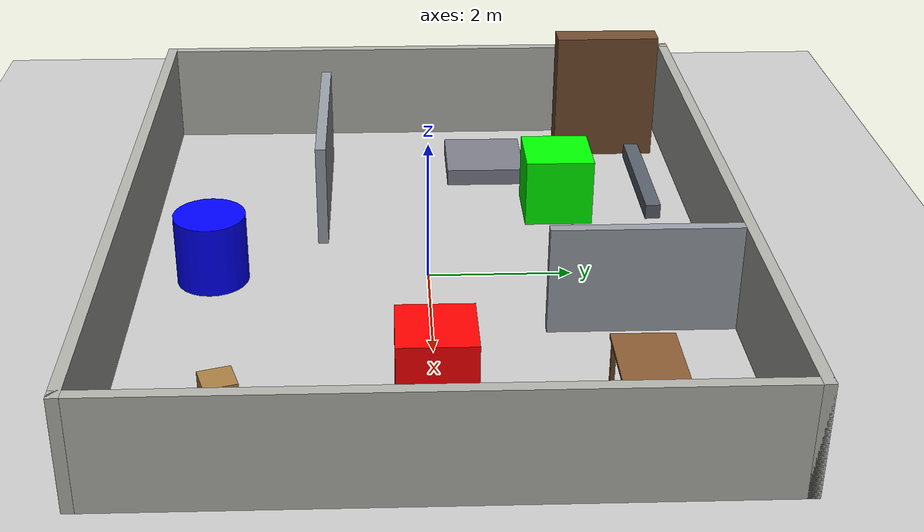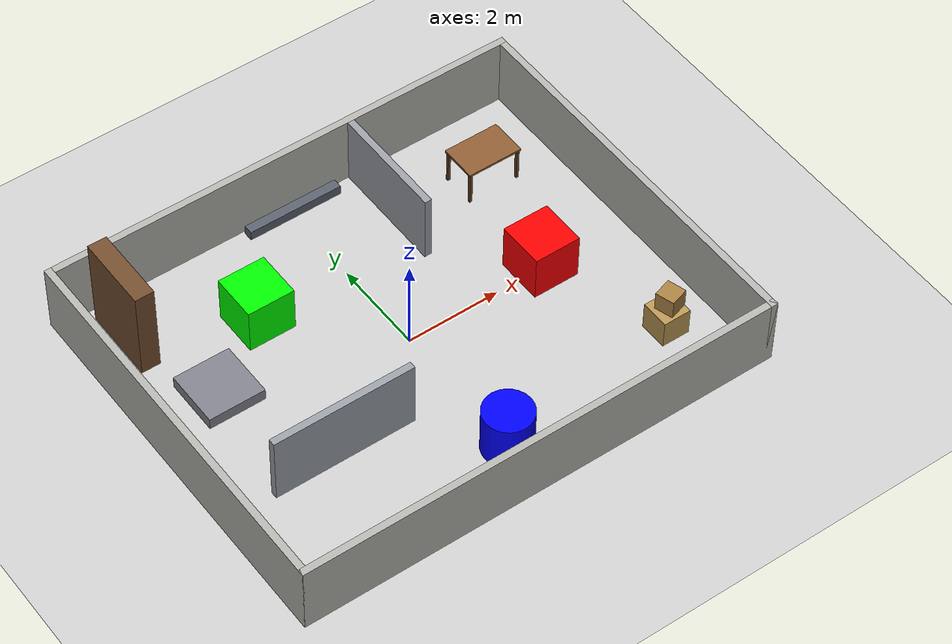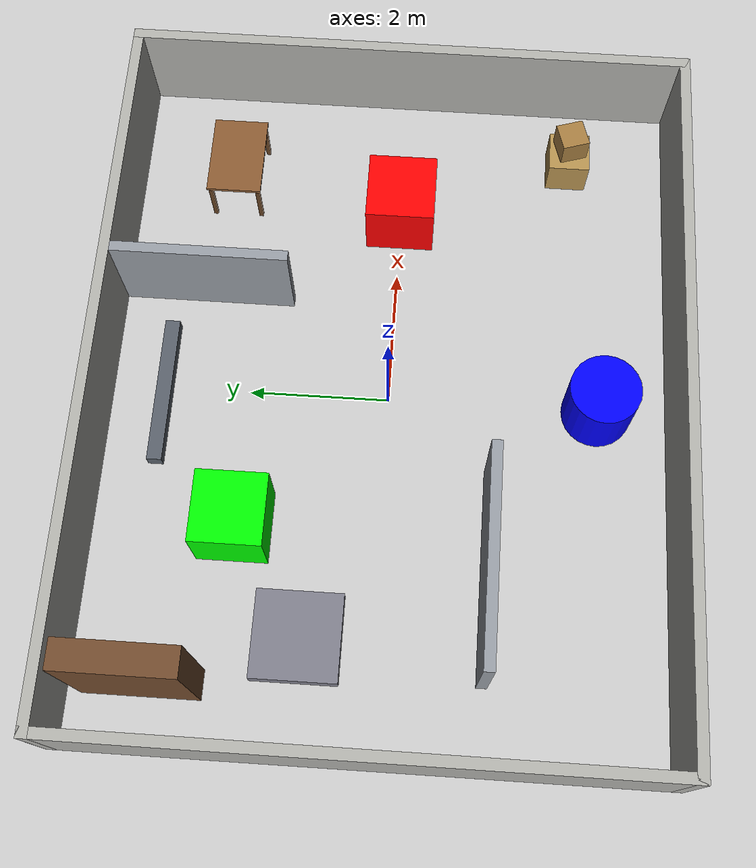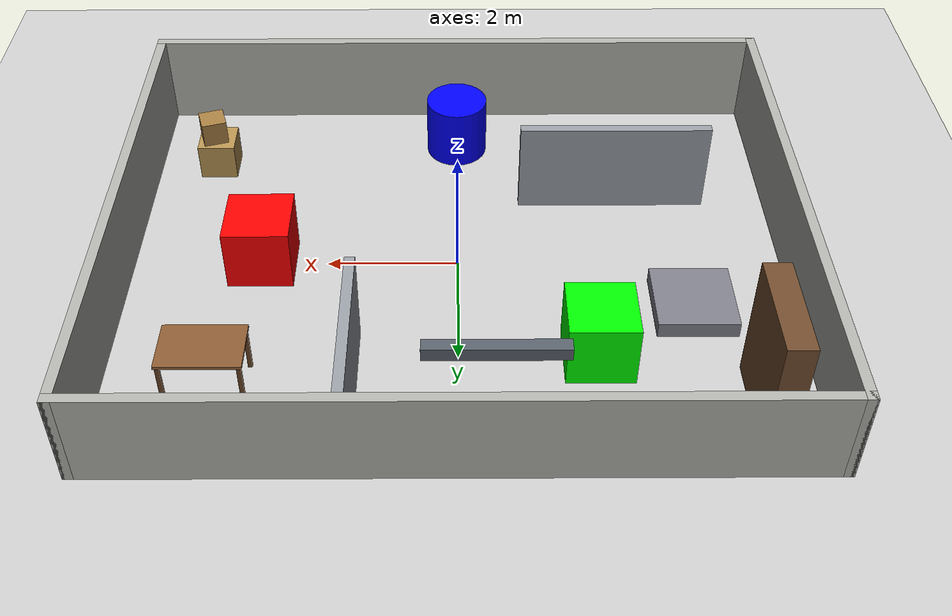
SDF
<?xml version="1.0" ?>
<sdf version="1.8">
  <world name="my_world">

    <plugin filename="gz-sim-physics-system"
            name="gz::sim::systems::Physics">
    </plugin>
    <plugin filename="gz-sim-user-commands-system"
            name="gz::sim::systems::UserCommands">
    </plugin>
    <plugin filename="gz-sim-scene-broadcaster-system"
            name="gz::sim::systems::SceneBroadcaster">
    </plugin>
    <plugin filename="gz-sim-sensors-system"
            name="gz::sim::systems::Sensors">
      <render_engine>ogre2</render_engine>
    </plugin>

    <light type="directional" name="sun">
      <cast_shadows>true</cast_shadows>
      <pose>0 0 10 0 0 0</pose>
      <diffuse>0.8 0.8 0.8 1</diffuse>
      <specular>0.2 0.2 0.2 1</specular>
      <direction>-0.5 0.1 -0.9</direction>
    </light>

    <model name="ground_plane">
      <static>true</static>
      <link name="link">
        <collision name="collision">
          <geometry>
            <plane>
              <normal>0 0 1</normal>
              <size>100 100</size>
            </plane>
          </geometry>
        </collision>
        <visual name="visual">
          <geometry>
            <plane>
              <normal>0 0 1</normal>
              <size>100 100</size>
            </plane>
          </geometry>
          <material>
            <ambient>0.8 0.8 0.8 1</ambient>
            <diffuse>0.8 0.8 0.8 1</diffuse>
          </material>
        </visual>
      </link>
    </model>

    <model name="box1">
      <static>true</static>
      <pose>3 0 0.5 0 0 0</pose>
      <link name="link">
        <collision name="collision">
          <geometry><box><size>1 1 1</size></box></geometry>
        </collision>
        <visual name="visual">
          <geometry><box><size>1 1 1</size></box></geometry>
          <material>
            <ambient>1 0 0 1</ambient>
            <diffuse>1 0 0 1</diffuse>
          </material>
        </visual>
      </link>
    </model>

    <model name="box2">
      <static>true</static>
      <pose>-2 2 0.5 0 0 0</pose>
      <link name="link">
        <collision name="collision">
          <geometry><box><size>1 1 1</size></box></geometry>
        </collision>
        <visual name="visual">
          <geometry><box><size>1 1 1</size></box></geometry>
          <material>
            <ambient>0 1 0 1</ambient>
            <diffuse>0 1 0 1</diffuse>
          </material>
        </visual>
      </link>
    </model>

    <model name="cylinder1">
      <static>true</static>
      <pose>0 -3 0.5 0 0 0</pose>
      <link name="link">
        <collision name="collision">
          <geometry><cylinder><radius>0.5</radius><length>1</length></cylinder></geometry>
        </collision>
        <visual name="visual">
          <geometry><cylinder><radius>0.5</radius><length>1</length></cylinder></geometry>
          <material>
            <ambient>0 0 1 1</ambient>
            <diffuse>0 0 1 1</diffuse>
          </material>
        </visual>
      </link>
    </model>

    <model name="wall_north">
      <static>true</static>
      <pose>0 4.075 0.75 0 0 0</pose>
      <link name="link">
        <collision name="collision">
          <geometry><box><size>10.3 0.15 1.5</size></box></geometry>
        </collision>
        <visual name="visual">
          <geometry><box><size>10.3 0.15 1.5</size></box></geometry>
          <material>
            <ambient>0.7 0.7 0.68 1</ambient>
            <diffuse>0.7 0.7 0.68 1</diffuse>
          </material>
        </visual>
      </link>
    </model>

    <model name="wall_south">
      <static>true</static>
      <pose>0 -4.075 0.75 0 0 0</pose>
      <link name="link">
        <collision name="collision">
          <geometry><box><size>10.3 0.15 1.5</size></box></geometry>
        </collision>
        <visual name="visual">
          <geometry><box><size>10.3 0.15 1.5</size></box></geometry>
          <material>
            <ambient>0.7 0.7 0.68 1</ambient>
            <diffuse>0.7 0.7 0.68 1</diffuse>
          </material>
        </visual>
      </link>
    </model>

    <model name="wall_east">
      <static>true</static>
      <pose>5.075 0 0.75 0 0 0</pose>
      <link name="link">
        <collision name="collision">
          <geometry><box><size>0.15 8.3 1.5</size></box></geometry>
        </collision>
        <visual name="visual">
          <geometry><box><size>0.15 8.3 1.5</size></box></geometry>
          <material>
            <ambient>0.7 0.7 0.68 1</ambient>
            <diffuse>0.7 0.7 0.68 1</diffuse>
          </material>
        </visual>
      </link>
    </model>

    <model name="wall_west">
      <static>true</static>
      <pose>-5.075 0 0.75 0 0 0</pose>
      <link name="link">
        <collision name="collision">
          <geometry><box><size>0.15 8.3 1.5</size></box></geometry>
        </collision>
        <visual name="visual">
          <geometry><box><size>0.15 8.3 1.5</size></box></geometry>
          <material>
            <ambient>0.7 0.7 0.68 1</ambient>
            <diffuse>0.7 0.7 0.68 1</diffuse>
          </material>
        </visual>
      </link>
    </model>

    <!-- 内墙: 制造走廊和拐角, 给 scan matching 提供可区分的特征 -->
    <model name="wall_inner_a">
      <static>true</static>
      <pose>-2.5 -1.5 0.75 0 0 0</pose>
      <link name="link">
        <collision name="collision">
          <geometry><box><size>3.0 0.15 1.5</size></box></geometry>
        </collision>
        <visual name="visual">
          <geometry><box><size>3.0 0.15 1.5</size></box></geometry>
          <material>
            <ambient>0.6 0.62 0.65 1</ambient>
            <diffuse>0.6 0.62 0.65 1</diffuse>
          </material>
        </visual>
      </link>
    </model>

    <model name="wall_inner_b">
      <static>true</static>
      <pose>1.5 2.75 0.75 0 0 0</pose>
      <link name="link">
        <collision name="collision">
          <geometry><box><size>0.15 2.5 1.5</size></box></geometry>
        </collision>
        <visual name="visual">
          <geometry><box><size>0.15 2.5 1.5</size></box></geometry>
          <material>
            <ambient>0.6 0.62 0.65 1</ambient>
            <diffuse>0.6 0.62 0.65 1</diffuse>
          </material>
        </visual>
      </link>
    </model>

    <!-- 桌子: 桌面0.75m在水平线以上, 只有桌腿会进2D地图 —— 3D雷达最典型的场景 -->
    <model name="table1">
      <static>true</static>
      <pose>3.5 2.5 0 0 0 0</pose>
      <link name="link">
        <collision name="top_col">
          <pose>0 0 0.755 0 0 0</pose>
          <geometry><box><size>1.2 0.8 0.05</size></box></geometry>
        </collision>
        <visual name="top_vis">
          <pose>0 0 0.755 0 0 0</pose>
          <geometry><box><size>1.2 0.8 0.05</size></box></geometry>
          <material>
            <ambient>0.55 0.36 0.20 1</ambient>
            <diffuse>0.55 0.36 0.20 1</diffuse>
          </material>
        </visual>
        <collision name="leg1_col">
          <pose>0.55 0.35 0.365 0 0 0</pose>
          <geometry><box><size>0.06 0.06 0.73</size></box></geometry>
        </collision>
        <visual name="leg1_vis">
          <pose>0.55 0.35 0.365 0 0 0</pose>
          <geometry><box><size>0.06 0.06 0.73</size></box></geometry>
          <material><ambient>0.4 0.26 0.14 1</ambient><diffuse>0.4 0.26 0.14 1</diffuse></material>
        </visual>
        <collision name="leg2_col">
          <pose>-0.55 0.35 0.365 0 0 0</pose>
          <geometry><box><size>0.06 0.06 0.73</size></box></geometry>
        </collision>
        <visual name="leg2_vis">
          <pose>-0.55 0.35 0.365 0 0 0</pose>
          <geometry><box><size>0.06 0.06 0.73</size></box></geometry>
          <material><ambient>0.4 0.26 0.14 1</ambient><diffuse>0.4 0.26 0.14 1</diffuse></material>
        </visual>
        <collision name="leg3_col">
          <pose>0.55 -0.35 0.365 0 0 0</pose>
          <geometry><box><size>0.06 0.06 0.73</size></box></geometry>
        </collision>
        <visual name="leg3_vis">
          <pose>0.55 -0.35 0.365 0 0 0</pose>
          <geometry><box><size>0.06 0.06 0.73</size></box></geometry>
          <material><ambient>0.4 0.26 0.14 1</ambient><diffuse>0.4 0.26 0.14 1</diffuse></material>
        </visual>
        <collision name="leg4_col">
          <pose>-0.55 -0.35 0.365 0 0 0</pose>
          <geometry><box><size>0.06 0.06 0.73</size></box></geometry>
        </collision>
        <visual name="leg4_vis">
          <pose>-0.55 -0.35 0.365 0 0 0</pose>
          <geometry><box><size>0.06 0.06 0.73</size></box></geometry>
          <material><ambient>0.4 0.26 0.14 1</ambient><diffuse>0.4 0.26 0.14 1</diffuse></material>
        </visual>
      </link>
    </model>

    <!-- 高书架 2m: 高于雷达全部视野, 近处只能看到下半截 -->
    <model name="shelf">
      <static>true</static>
      <pose>-4.2 3.0 1.0 0 0 0</pose>
      <link name="link">
        <collision name="collision">
          <geometry><box><size>0.4 1.6 2.0</size></box></geometry>
        </collision>
        <visual name="visual">
          <geometry><box><size>0.4 1.6 2.0</size></box></geometry>
          <material>
            <ambient>0.45 0.30 0.18 1</ambient>
            <diffuse>0.45 0.30 0.18 1</diffuse>
          </material>
        </visual>
      </link>
    </model>

    <!-- 矮台阶 0.25m: 刚好跨过雷达高度(0.185m), 2D地图里会时有时无 -->
    <model name="platform">
      <static>true</static>
      <pose>-3.5 1.0 0.125 0 0 0</pose>
      <link name="link">
        <collision name="collision">
          <geometry><box><size>1.2 1.2 0.25</size></box></geometry>
        </collision>
        <visual name="visual">
          <geometry><box><size>1.2 1.2 0.25</size></box></geometry>
          <material>
            <ambient>0.50 0.50 0.55 1</ambient>
            <diffuse>0.50 0.50 0.55 1</diffuse>
          </material>
        </visual>
      </link>
    </model>

    <!-- 悬空横梁 z=1.2m: 完全在水平线以上, 只有上方几线扫得到, 2D地图上不该出现 -->
    <model name="overhead_beam">
      <static>true</static>
      <pose>-0.5 3.0 1.2 0 0 0</pose>
      <link name="link">
        <collision name="collision">
          <geometry><box><size>2.0 0.2 0.2</size></box></geometry>
        </collision>
        <visual name="visual">
          <geometry><box><size>2.0 0.2 0.2</size></box></geometry>
          <material>
            <ambient>0.35 0.38 0.42 1</ambient>
            <diffuse>0.35 0.38 0.42 1</diffuse>
          </material>
        </visual>
      </link>
    </model>

    <!-- 堆叠箱: 上下两层不同尺寸, 点云里是阶梯状 -->
    <model name="crates">
      <static>true</static>
      <pose>4.0 -2.5 0 0 0 0</pose>
      <link name="link">
        <collision name="lower_col">
          <pose>0 0 0.3 0 0 0</pose>
          <geometry><box><size>0.6 0.6 0.6</size></box></geometry>
        </collision>
        <visual name="lower_vis">
          <pose>0 0 0.3 0 0 0</pose>
          <geometry><box><size>0.6 0.6 0.6</size></box></geometry>
          <material><ambient>0.72 0.58 0.32 1</ambient><diffuse>0.72 0.58 0.32 1</diffuse></material>
        </visual>
        <collision name="upper_col">
          <pose>0.05 0 0.8 0 0 0.3</pose>
          <geometry><box><size>0.4 0.4 0.4</size></box></geometry>
        </collision>
        <visual name="upper_vis">
          <pose>0.05 0 0.8 0 0 0.3</pose>
          <geometry><box><size>0.4 0.4 0.4</size></box></geometry>
          <material><ambient>0.66 0.50 0.26 1</ambient><diffuse>0.66 0.50 0.26 1</diffuse></material>
        </visual>
      </link>
    </model>

  </world>
</sdf>
